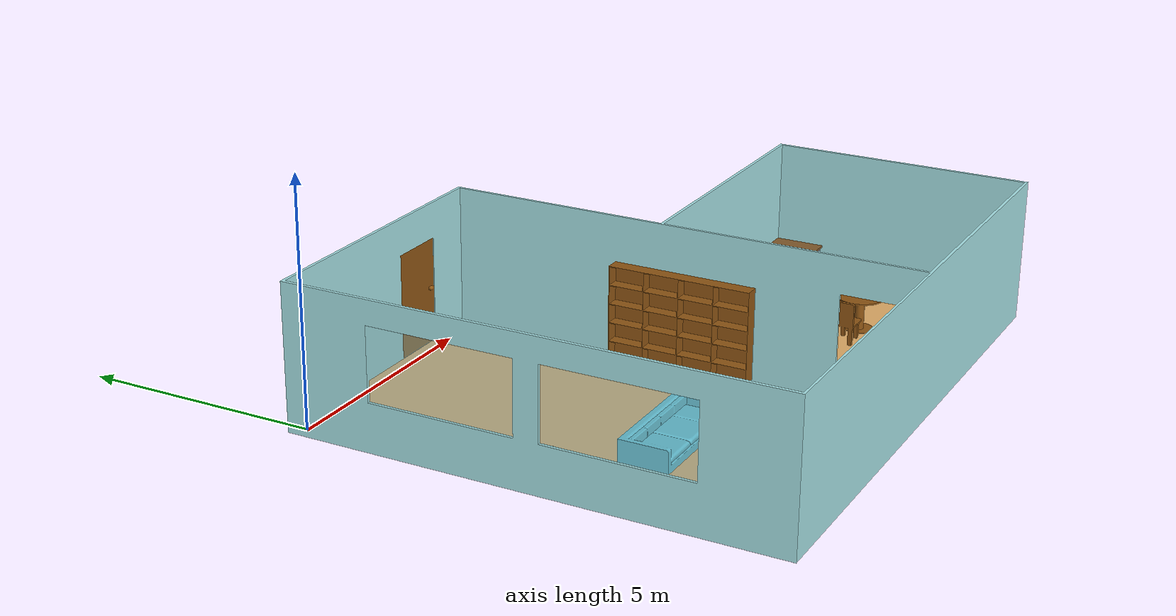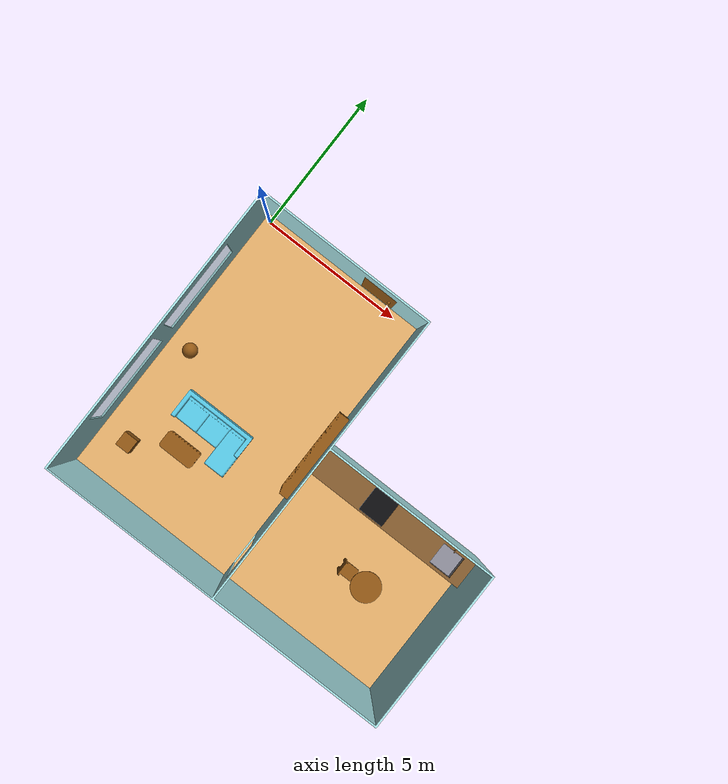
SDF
<sdf version="1.7">
 <world name="room">
  <plugin filename="gz-sim-physics-system" name="gz::sim::systems::Physics"/>
  <plugin filename="gz-sim-scene-broadcaster-system" name="gz::sim::systems::SceneBroadcaster"/>
  <plugin filename="gz-sim-user-commands-system" name="gz::sim::systems::UserCommands"/>
  <plugin filename="gz-sim-sensors-system" name="gz::sim::systems::Sensors">
   <render_engine>ogre2</render_engine>
  </plugin>
  <plugin filename="gz-sim-imu-system" name="gz::sim::systems::Imu"/>
  <scene><ambient>0.4 0.4 0.4 1</ambient><shadows>false</shadows></scene>
  <light type="directional" name="light_one">
   <pose>0 0 50 0 0 0</pose>
   <diffuse>0.5 0.5 0.5 1</diffuse>
   <specular>1 1 1 0</specular>
   <direction>1 0 0.5</direction>
  </light>
  <light type="directional" name="light_two">
   <pose>0 0 50 0 0 0</pose>
   <diffuse>0.5 0.5 0.5 1</diffuse>
   <specular>1 1 1 0</specular>
   <direction>1 0 -0.5</direction>
  </light>
  <model name="room">
   <static>true</static>
   <link name="floor">
    <inertial>
     <mass>3207.2039999999997</mass>
     <pose>4.867892145307876 -5.597289227626306 0.025000000000000005 0.0 0.0 0.0</pose>
     <inertia>
      <ixx>23989.719054845</ixx>
      <iyy>35502.759628127766</iyy>
      <izz>59491.142347972695</izz>
      <ixy>9966.206194311308</ixy>
      <iyz>-5.684341886080802e-14</iyz>
      <ixz>5.684341886080802e-14</ixz>
     </inertia>
    </inertial>
    <visual name="floor_visual">
     <geometry><mesh><uri>meshes/floor.stl</uri><scale>0.001 0.001 0.001</scale></mesh></geometry>
     <material>
      <ambient>0.678 0.490 0.243 1</ambient>
      <diffuse>0.901 0.690 0.416 1</diffuse>
      <specular>0.2 0.2 0.2 1</specular>
      <emissive>0 0 0 1</emissive>
     </material>
    </visual>
    <collision name="floor_collision">
     <geometry><mesh><uri>meshes/floor.stl</uri><scale>0.001 0.001 0.001</scale></mesh></geometry>
    </collision>
   </link>
   <link name="walls">
    <inertial>
     <mass>5119.931625</mass>
     <pose>5.602528096810765 -5.596818578399961 1.4941361463005864 0.0 0.0 0.0</pose>
     <inertia>
      <ixx>70652.24862203511</ixx>
      <iyy>93282.30310471379</iyy>
      <izz>155773.67947669612</izz>
      <ixy>21604.39291710753</ixy>
      <iyz>-42.5507939504314</iyz>
      <ixz>-527.0417139873534</ixz>
     </inertia>
    </inertial>
    <visual name="walls_visual">
     <geometry><mesh><uri>meshes/walls.stl</uri><scale>0.001 0.001 0.001</scale></mesh></geometry>
     <material>
      <ambient>0.541 0.729 0.741 1</ambient>
      <diffuse>0.662 0.898 0.910 1</diffuse>
      <specular>0 0 0 1</specular>
      <emissive>0 0 0 1</emissive>
     </material>
    </visual>
    <collision name="walls_collision">
     <geometry><mesh><uri>meshes/walls.stl</uri><scale>0.001 0.001 0.001</scale></mesh></geometry>
    </collision>
   </link>
   <link name="window_two">
    <inertial>
     <mass>707.8499999999999</mass>
     <pose>-0.2325 -3.0525 1.75 0.0 0.0 0.0</pose>
     <inertia>
      <ixx>663.609375</ixx>
      <iyy>132.97109718750016</iyy>
      <izz>531.1367221874989</izz>
      <ixy>0.0</ixy>
      <iyz>4.547473508864641e-13</iyz>
      <ixz>0.0</ixz>
     </inertia>
    </inertial>
    <visual name="window_two_visual">
     <geometry><mesh><uri>meshes/window_two.stl</uri><scale>0.001 0.001 0.001</scale></mesh></geometry>
     <material>
      <ambient>0.541 0.729 0.741 0.4</ambient>
      <diffuse>0.662 0.898 0.910 0.4</diffuse>
      <specular>0 0 0 0.4</specular>
      <emissive>0 0 0 0.4</emissive>
     </material>
    </visual>
    <collision name="window_two_collision">
     <geometry><mesh><uri>meshes/window_two.stl</uri><scale>0.001 0.001 0.001</scale></mesh></geometry>
    </collision>
   </link>
   <link name="window_one">
    <inertial>
     <mass>707.8499999999999</mass>
     <pose>-0.2325 -6.5525 1.75 0.0 0.0 0.0</pose>
     <inertia>
      <ixx>663.609375</ixx>
      <iyy>132.97109718750016</iyy>
      <izz>531.1367221874971</izz>
      <ixy>0.0</ixy>
      <iyz>1.8189894035458565e-12</iyz>
      <ixz>0.0</ixz>
     </inertia>
    </inertial>
    <visual name="window_one_visual">
     <geometry><mesh><uri>meshes/window_one.stl</uri><scale>0.001 0.001 0.001</scale></mesh></geometry>
     <material>
      <ambient>0.541 0.729 0.741 0.4</ambient>
      <diffuse>0.662 0.898 0.910 0.4</diffuse>
      <specular>0 0 0 0.4</specular>
      <emissive>0 0 0 0.4</emissive>
     </material>
    </visual>
    <collision name="window_one_collision">
     <geometry><mesh><uri>meshes/window_one.stl</uri><scale>0.001 0.001 0.001</scale></mesh></geometry>
    </collision>
   </link>
   <link name="door">
    <inertial>
     <mass>80.90622930238219</mass>
     <pose>4.153415651129651 0.23000000000000004 1.1506027619640562 0.0 0.0 0.0</pose>
     <inertia>
      <ixx>32.39450110252231</ixx>
      <iyy>42.121416600180055</iyy>
      <izz>9.768176718958557</izz>
      <ixy>2.842170943040401e-14</ixy>
      <iyz>0.0</iyz>
      <ixz>-0.020559487279513178</ixz>
     </inertia>
    </inertial>
    <visual name="door_visual">
     <geometry><mesh><uri>meshes/door.stl</uri><scale>0.001 0.001 0.001</scale></mesh></geometry>
     <material>
      <ambient>0.400 0.239 0.051 1</ambient>
      <diffuse>0.569 0.341 0.078 1</diffuse>
      <specular>0.4 0.4 0.4 1</specular>
      <emissive>0 0 0 1</emissive>
     </material>
    </visual>
    <collision name="door_collision">
     <geometry><mesh><uri>meshes/door.stl</uri><scale>0.001 0.001 0.001</scale></mesh></geometry>
    </collision>
   </link>
  </model>
  <model name="lounge">
   <static>true</static>
   <link name="coffee_table">
    <inertial>
     <mass>31.71953221068807</mass>
     <pose>2.239981384277429 -7.469981384277347 0.2959989866576574 0.0 0.0 0.0</pose>
     <inertia>
      <ixx>1.515551525729279</ixx>
      <iyy>5.333935636132793</iyy>
      <izz>5.801738403159561</izz>
      <ixy>4.547473508864641e-13</ixy>
      <iyz>-1.4210854715202004e-14</iyz>
      <ixz>4.902744876744691e-13</ixz>
     </inertia>
    </inertial>
    <visual name="coffee_table_visual">
     <geometry><mesh><uri>meshes/coffee_table.stl</uri><scale>0.001 0.001 0.001</scale></mesh></geometry>
     <material>
      <ambient>0.400 0.239 0.051 1</ambient>
      <diffuse>0.569 0.341 0.078 1</diffuse>
      <specular>0.4 0.4 0.4 1</specular>
      <emissive>0 0 0 1</emissive>
     </material>
    </visual>
    <collision name="coffee_table_collision">
     <geometry><mesh><uri>meshes/coffee_table.stl</uri><scale>0.001 0.001 0.001</scale></mesh></geometry>
    </collision>
   </link>
   <link name="sofa">
    <inertial>
     <mass>145.51396319305684</mass>
     <pose>2.7020216564408686 -6.307656743478596 0.2859317610733626 0.0 0.0 0.0</pose>
     <inertia>
      <ixx>25.18212674256756</ixx>
      <iyy>86.88923793659797</iyy>
      <izz>108.05590206765464</izz>
      <ixy>11.511084303396729</ixy>
      <iyz>-1.9307371668044766</iyz>
      <ixz>0.8804010379720637</ixz>
     </inertia>
    </inertial>
    <visual name="sofa_visual">
     <geometry><mesh><uri>meshes/sofa.stl</uri><scale>0.001 0.001 0.001</scale></mesh></geometry>
     <material>
      <ambient>0.184 0.643 0.761 1</ambient>
      <diffuse>0.345 0.796 0.910 1</diffuse>
      <specular>0.1 0.1 0.1 1</specular>
      <emissive>0 0 0 1</emissive>
     </material>
    </visual>
    <collision name="sofa_collision">
     <geometry><mesh><uri>meshes/sofa_col.stl</uri><scale>0.001 0.001 0.001</scale></mesh></geometry>
    </collision>
   </link>
   <link name="Bookshelf">
    <pose>5.6484587045685934 -4.899999999999997 1.05 0.0 -0.0 -3.1415926535889964</pose>
    <inertial>
     <mass>2069.603437499998</mass>
     <pose>-0.07284243652656311 -5.215058732387876e-16 -5.684341886080802e-16 0.0 0.0 0.0</pose>
     <inertia>
      <ixx>2426.390938839256</ixx>
      <iyy>778.791054508258</iyy>
      <izz>1681.807045288122</izz>
      <ixy>4.4492109945228865e-12</ixy>
      <iyz>3.6379788070902686e-12</iyz>
      <ixz>1.818989403548757e-12</ixz>
     </inertia>
    </inertial>
    <visual name="Bookshelf_visual">
     <geometry><mesh><uri>meshes/Bookshelf.stl</uri><scale>0.001 0.001 0.001</scale></mesh></geometry>
     <material>
      <ambient>0.400 0.239 0.051 1</ambient>
      <diffuse>0.569 0.341 0.078 1</diffuse>
      <specular>0.4 0.4 0.4 1</specular>
      <emissive>0 0 0 1</emissive>
     </material>
    </visual>
    <collision name="Bookshelf_collision">
     <geometry><mesh><uri>meshes/Bookshelf.stl</uri><scale>0.001 0.001 0.001</scale></mesh></geometry>
    </collision>
   </link>
   <link name="sphere">
    <inertial>
     <mass>513.7812985558306</mass>
     <pose>0.55 -4.805000000000001 0.3 0.0 0.0 0.0</pose>
     <inertia>
      <ixx>12.844532463894211</ixx>
      <iyy>12.844532463895774</iyy>
      <izz>12.844532463894211</izz>
      <ixy>-2.2737367544323206e-13</ixy>
      <iyz>0.0</iyz>
      <ixz>0.0</ixz>
     </inertia>
    </inertial>
    <visual name="sphere_visual">
     <geometry><mesh><uri>meshes/sphere.stl</uri><scale>0.001 0.001 0.001</scale></mesh></geometry>
     <material>
      <ambient>0.400 0.239 0.051 1</ambient>
      <diffuse>0.569 0.341 0.078 1</diffuse>
      <specular>0.4 0.4 0.4 1</specular>
      <emissive>0 0 0 1</emissive>
     </material>
    </visual>
    <collision name="sphere_collision">
     <geometry><mesh><uri>meshes/sphere.stl</uri><scale>0.001 0.001 0.001</scale></mesh></geometry>
    </collision>
   </link>
   <link name="box">
    <inertial>
     <mass>981.2499999999999</mass>
     <pose>0.8 -8.305 0.3 0.0 0.0 0.0</pose>
     <inertia>
      <ixx>40.88541666670062</ixx>
      <iyy>40.885416666666515</iyy>
      <izz>40.88541666670062</izz>
      <ixy>0.0</ixy>
      <iyz>0.0</iyz>
      <ixz>-2.842170943040401e-14</ixz>
     </inertia>
    </inertial>
    <visual name="box_visual">
     <geometry><mesh><uri>meshes/box.stl</uri><scale>0.001 0.001 0.001</scale></mesh></geometry>
     <material>
      <ambient>0.400 0.239 0.051 1</ambient>
      <diffuse>0.569 0.341 0.078 1</diffuse>
      <specular>0.4 0.4 0.4 1</specular>
      <emissive>0 0 0 1</emissive>
     </material>
    </visual>
    <collision name="box_collision">
     <geometry><mesh><uri>meshes/box.stl</uri><scale>0.001 0.001 0.001</scale></mesh></geometry>
    </collision>
   </link>
  </model>
  <model name="kitchen">
   <static>true</static>
   <link name="kitchen_table">
    <pose>0.0 5.0 0.0 0.0 -0.0 0.0</pose>
    <inertial>
     <mass>377.32098565940254</mass>
     <pose>9.49 -12.200000000000001 0.5608823529411758 0.0 0.0 0.0</pose>
     <inertia>
      <ixx>36.77148590316938</ixx>
      <iyy>36.771485903176654</iyy>
      <izz>24.96977110980515</izz>
      <ixy>1.8189894035458565e-11</ixy>
      <iyz>-2.2737367544323206e-13</iyz>
      <ixz>0.0</ixz>
     </inertia>
    </inertial>
    <visual name="kitchen_table_visual">
     <geometry><mesh><uri>meshes/kitchen_table.stl</uri><scale>0.001 0.001 0.001</scale></mesh></geometry>
     <material>
      <ambient>0.400 0.239 0.051 1</ambient>
      <diffuse>0.569 0.341 0.078 1</diffuse>
      <specular>0.4 0.4 0.4 1</specular>
      <emissive>0 0 0 1</emissive>
     </material>
    </visual>
    <collision name="kitchen_table_collision">
     <geometry><mesh><uri>meshes/kitchen_table.stl</uri><scale>0.001 0.001 0.001</scale></mesh></geometry>
    </collision>
   </link>
   <link name="kitchen_chair">
    <inertial>
     <mass>27.205549716217178</mass>
     <pose>8.675596019647182 -7.193004637152666 0.48979960206939355 0.0 0.0 0.0</pose>
     <inertia>
      <ixx>1.9641457577624806</ixx>
      <iyy>2.332885619681747</iyy>
      <izz>1.4065995779355944</izz>
      <ixy>4.547473508864641e-13</ixy>
      <iyz>0.0</iyz>
      <ixz>0.5375811180004746</ixz>
     </inertia>
    </inertial>
    <visual name="kitchen_chair_visual">
     <geometry><mesh><uri>meshes/kitchen_chair.stl</uri><scale>0.001 0.001 0.001</scale></mesh></geometry>
     <material>
      <ambient>0.400 0.239 0.051 1</ambient>
      <diffuse>0.569 0.341 0.078 1</diffuse>
      <specular>0.4 0.4 0.4 1</specular>
      <emissive>0 0 0 1</emissive>
     </material>
    </visual>
    <collision name="kitchen_chair_collision">
     <geometry><mesh><uri>meshes/kitchen_chair.stl</uri><scale>0.001 0.001 0.001</scale></mesh></geometry>
    </collision>
   </link>
  </model>
  <model name="kitchen_counter">
   <static>true</static>
   <link name="counters">
    <pose>5.849999999999993 -4.410000000001331 0.05 -9.807798241791999e-32 -4.336808689942018e-19 -1.5707963267946705</pose>
    <inertial>
     <mass>33676.5</mass>
     <pose>0.4979020979020992 2.8795804195804267 0.36730769230769234 0.0 0.0 0.0</pose>
     <inertia>
      <ixx>96721.02081652245</ixx>
      <iyy>4381.6425284090765</iyy>
      <izz>98009.92185454536</izz>
      <ixy>156.87264335651687</ixy>
      <iyz>575.1996923076474</iyz>
      <ixz>19.972211538463974</ixz>
     </inertia>
    </inertial>
    <visual name="counters_visual">
     <geometry><mesh><uri>meshes/counters.stl</uri><scale>0.001 0.001 0.001</scale></mesh></geometry>
     <material>
      <ambient>0.22 0.22 0.24 1</ambient>
      <diffuse>0.55 0.55 0.60 1</diffuse>
      <specular>0.90 0.90 0.95 1</specular>
      <emissive>0 0 0 1</emissive>
     </material>
    </visual>
    <collision name="counters_collision">
     <geometry><mesh><uri>meshes/counters.stl</uri><scale>0.001 0.001 0.001</scale></mesh></geometry>
    </collision>
   </link>
   <link name="top">
    <pose>5.849999999999993 -4.410000000001331 0.05 -9.807798241791999e-32 -4.336808689942018e-19 -1.5707963267946705</pose>
    <inertial>
     <mass>2189.9331303487857</mass>
     <pose>0.5192892572387423 2.7098278401923954 0.7750994079092629 0.0 0.0 0.0</pose>
     <inertia>
      <ixx>5765.126654062649</ixx>
      <iyy>211.67459298436154</iyy>
      <izz>5975.8363748102565</izz>
      <ixy>29.891839060040347</ixy>
      <iyz>-0.5203325292695977</iyz>
      <ixz>0.07196079572338343</ixz>
     </inertia>
    </inertial>
    <visual name="top_visual">
     <geometry><mesh><uri>meshes/top.stl</uri><scale>0.001 0.001 0.001</scale></mesh></geometry>
     <material>
      <ambient>0.18 0.12 0.05 1</ambient>
      <diffuse>0.52 0.36 0.18 1</diffuse>
      <specular>0.20 0.16 0.10 1</specular>
      <emissive>0 0 0 1</emissive>
     </material>
    </visual>
    <collision name="top_collision">
     <geometry><mesh><uri>meshes/top.stl</uri><scale>0.001 0.001 0.001</scale></mesh></geometry>
    </collision>
   </link>
   <link name="oven_door">
    <pose>5.849999999999993 -4.410000000001331 0.05 -9.807798241791999e-32 -4.336808689942018e-19 -1.5707963267946705</pose>
    <inertial>
     <mass>67.70625</mass>
     <pose>1.0095289855072491 2.4000000000000052 0.4136956521739131 0.0 0.0 0.0</pose>
     <inertia>
      <ixx>6.701994028532695</ixx>
      <iyy>2.1101460388360964</iyy>
      <izz>4.603445760301838</izz>
      <ixy>3.259016077014604e-13</ixy>
      <iyz>-5.027868086846594e-14</iyz>
      <ixz>-0.029027934782618586</ixz>
     </inertia>
    </inertial>
    <visual name="oven_door_visual">
     <geometry><mesh><uri>meshes/oven-door.stl</uri><scale>0.001 0.001 0.001</scale></mesh></geometry>
     <material>
      <ambient>0.02 0.02 0.02 1</ambient>
      <diffuse>0.05 0.05 0.06 1</diffuse>
      <specular>0.95 0.95 0.95 1</specular>
      <emissive>0 0 0 1</emissive>
     </material>
    </visual>
    <collision name="oven_door_collision">
     <geometry><mesh><uri>meshes/oven-door.stl</uri><scale>0.001 0.001 0.001</scale></mesh></geometry>
    </collision>
   </link>
   <link name="stove_top">
    <pose>5.849999999999993 -4.410000000001331 0.05 -9.807798241791999e-32 -4.336808689942018e-19 -1.5707963267946705</pose>
    <inertial>
     <mass>66.80885139538091</mass>
     <pose>0.527184349643448 2.4000000000000052 0.805 0.0 0.0 0.0</pose>
     <inertia>
      <ixx>4.510154209616314</ixx>
      <iyy>4.979032963941119</iyy>
      <izz>9.48807369269889</izz>
      <ixy>-8.031802402006982e-13</ixy>
      <iyz>5.684341886082094e-14</iyz>
      <ixz>-5.6839304064751085e-14</ixz>
     </inertia>
    </inertial>
    <visual name="stove_top_visual">
     <geometry><mesh><uri>meshes/stove_top.stl</uri><scale>0.001 0.001 0.001</scale></mesh></geometry>
     <material>
      <ambient>0.02 0.02 0.02 1</ambient>
      <diffuse>0.05 0.05 0.06 1</diffuse>
      <specular>0.95 0.95 0.95 1</specular>
      <emissive>0 0 0 1</emissive>
     </material>
    </visual>
    <collision name="stove_top_collision">
     <geometry><mesh><uri>meshes/stove_top.stl</uri><scale>0.001 0.001 0.001</scale></mesh></geometry>
    </collision>
   </link>
   <link name="k_door_one">
    <pose>5.849999999999993 -4.410000000001331 0.05 -9.807798241791999e-32 -4.336808689942018e-19 -1.5707963267946705</pose>
    <inertial>
     <mass>71.75069436940348</mass>
     <pose>1.0100782795262162 0.5985067225216502 0.39455805147919865 0.0 0.0 0.0</pose>
     <inertia>
      <ixx>5.468557478624474</ixx>
      <iyy>2.5179359000776502</iyy>
      <izz>2.9556708812242505</izz>
      <ixy>0.0018976356348198034</ixy>
      <iyz>0.002133445533331751</iyz>
      <ixz>-0.00011183795905318956</ixz>
     </inertia>
    </inertial>
    <visual name="k_door_one_visual">
     <geometry><mesh><uri>meshes/k_door_one.stl</uri><scale>0.001 0.001 0.001</scale></mesh></geometry>
     <material>
      <ambient>0.18 0.12 0.05 1</ambient>
      <diffuse>0.52 0.36 0.18 1</diffuse>
      <specular>0.20 0.16 0.10 1</specular>
      <emissive>0 0 0 1</emissive>
     </material>
    </visual>
    <collision name="k_door_one_collision">
     <geometry><mesh><uri>meshes/k_door_one.stl</uri><scale>0.001 0.001 0.001</scale></mesh></geometry>
    </collision>
   </link>
   <link name="k_door_two">
    <pose>5.849999999999993 -4.410000000001331 0.05 -9.807798241791999e-32 -4.336808689942018e-19 -1.5707963267946705</pose>
    <inertial>
     <mass>71.75069436940348</mass>
     <pose>1.010078279526215 1.4985067225216522 0.39455805147919865 0.0 0.0 0.0</pose>
     <inertia>
      <ixx>5.4685574786235644</ixx>
      <iyy>2.5179359000776502</iyy>
      <izz>2.9556708812224315</izz>
      <ixy>0.0018976356348198034</ixy>
      <iyz>0.0021334455333033293</iyz>
      <ixz>-0.00011183795911003298</ixz>
     </inertia>
    </inertial>
    <visual name="k_door_two_visual">
     <geometry><mesh><uri>meshes/k_door_two.stl</uri><scale>0.001 0.001 0.001</scale></mesh></geometry>
     <material>
      <ambient>0.18 0.12 0.05 1</ambient>
      <diffuse>0.52 0.36 0.18 1</diffuse>
      <specular>0.20 0.16 0.10 1</specular>
      <emissive>0 0 0 1</emissive>
     </material>
    </visual>
    <collision name="k_door_two_collision">
     <geometry><mesh><uri>meshes/k_door_two.stl</uri><scale>0.001 0.001 0.001</scale></mesh></geometry>
    </collision>
   </link>
   <link name="k_door_three">
    <pose>5.849999999999993 -4.410000000001331 0.05 -9.807798241791999e-32 -4.336808689942018e-19 -1.5707963267946705</pose>
    <inertial>
     <mass>71.75069436940348</mass>
     <pose>1.0100782795262162 3.298506722521657 0.39455805147919865 0.0 0.0 0.0</pose>
     <inertia>
      <ixx>5.468557478622655</ixx>
      <iyy>2.5179359000771955</iyy>
      <izz>2.9556708812224315</izz>
      <ixy>0.0018976356357292981</ixy>
      <iyz>0.0021334455333885944</iyz>
      <ixz>-0.00011183795905318956</ixz>
     </inertia>
    </inertial>
    <visual name="k_door_three_visual">
     <geometry><mesh><uri>meshes/k_door_three.stl</uri><scale>0.001 0.001 0.001</scale></mesh></geometry>
     <material>
      <ambient>0.18 0.12 0.05 1</ambient>
      <diffuse>0.52 0.36 0.18 1</diffuse>
      <specular>0.20 0.16 0.10 1</specular>
      <emissive>0 0 0 1</emissive>
     </material>
    </visual>
    <collision name="k_door_three_collision">
     <geometry><mesh><uri>meshes/k_door_three.stl</uri><scale>0.001 0.001 0.001</scale></mesh></geometry>
    </collision>
   </link>
   <link name="k_door_four">
    <pose>5.849999999999993 -4.410000000001331 0.05 -9.807798241791999e-32 -4.336808689942018e-19 -1.5707963267946705</pose>
    <inertial>
     <mass>71.75069436940348</mass>
     <pose>1.0100782795262153 4.198506722521658 0.39455805147919865 0.0 0.0 0.0</pose>
     <inertia>
      <ixx>5.468557478622655</ixx>
      <iyy>2.5179359000771955</iyy>
      <izz>2.955670881219703</izz>
      <ixy>0.0018976356357292981</ixy>
      <iyz>0.002133445533331751</iyz>
      <ixz>-0.00011183795908161127</ixz>
     </inertia>
    </inertial>
    <visual name="k_door_four_visual">
     <geometry><mesh><uri>meshes/k_door_four.stl</uri><scale>0.001 0.001 0.001</scale></mesh></geometry>
     <material>
      <ambient>0.18 0.12 0.05 1</ambient>
      <diffuse>0.52 0.36 0.18 1</diffuse>
      <specular>0.20 0.16 0.10 1</specular>
      <emissive>0 0 0 1</emissive>
     </material>
    </visual>
    <collision name="k_door_four_collision">
     <geometry><mesh><uri>meshes/k_door_four.stl</uri><scale>0.001 0.001 0.001</scale></mesh></geometry>
    </collision>
   </link>
   <link name="k_door_five">
    <pose>5.849999999999993 -4.410000000001331 0.05 -9.807798241791999e-32 -4.336808689942018e-19 -1.5707963267946705</pose>
    <inertial>
     <mass>71.75069436940348</mass>
     <pose>1.0100782795262153 5.098506722521661 0.39455805147919865 0.0 0.0 0.0</pose>
     <inertia>
      <ixx>5.4685574786235644</ixx>
      <iyy>2.5179359000771955</iyy>
      <izz>2.955670881219703</izz>
      <ixy>0.0018976356352745508</ixy>
      <iyz>0.002133445533331751</iyz>
      <ixz>-0.00011183795902476785</ixz>
     </inertia>
    </inertial>
    <visual name="k_door_five_visual">
     <geometry><mesh><uri>meshes/k_door_five.stl</uri><scale>0.001 0.001 0.001</scale></mesh></geometry>
     <material>
      <ambient>0.18 0.12 0.05 1</ambient>
      <diffuse>0.52 0.36 0.18 1</diffuse>
      <specular>0.20 0.16 0.10 1</specular>
      <emissive>0 0 0 1</emissive>
     </material>
    </visual>
    <collision name="k_door_five_collision">
     <geometry><mesh><uri>meshes/k_door_five.stl</uri><scale>0.001 0.001 0.001</scale></mesh></geometry>
    </collision>
   </link>
  </model>
 </world>
</sdf>
